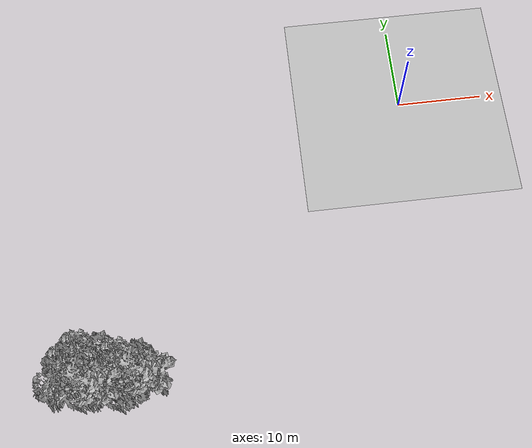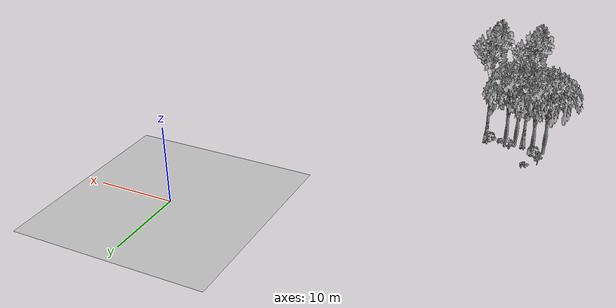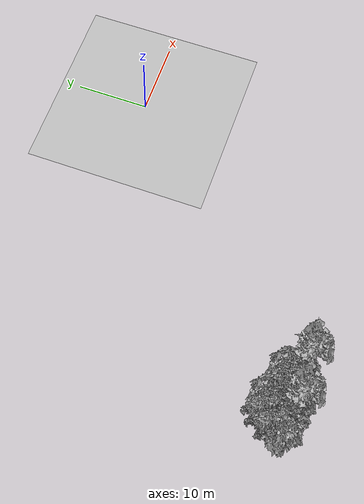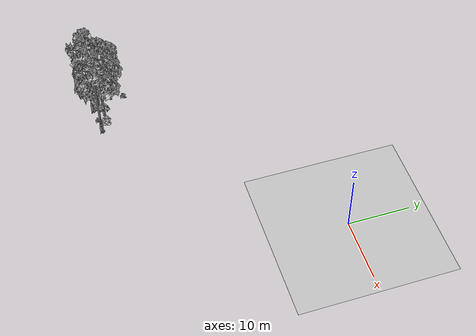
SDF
<sdf version="1.7">
 <world name="default">
  <model name="ground_plane">
   <static>1</static>
   <link name="link">
    <collision name="collision">
     <pose>-50 0 0 0 -0 0</pose>
     <geometry><plane><normal>0 0 1</normal><size>80 80</size></plane></geometry>
     <surface><contact><ode><min_depth>0.01</min_depth><max_vel>0</max_vel></ode></contact></surface>
    </collision>
    <visual name="grass">
     <cast_shadows>0</cast_shadows>
     <geometry>
      <mesh>
       <scale>0.46714285714285714 0.46714285714285714 0.1</scale>
       <uri>file://grass_plane/meshes/grass_plane.dae</uri>
      </mesh>
     </geometry>
    </visual>
   </link>
  </model>
  <model name="Tree 203">
   <static>1</static>
   <pose>-30.37163454133747 -31.457435455897613 0 1.57079 -0 0</pose>
   <link name="link">
    <collision name="collision">
     <geometry><mesh><scale>3.5 5 3.5</scale><uri>model://tree_9/meshes/tree_9.obj</uri></mesh></geometry>
    </collision>
    <visual name="visual">
     <geometry><mesh><scale>3.5 5 3.5</scale><uri>model://tree_9/meshes/tree_9.obj</uri></mesh></geometry>
    </visual>
   </link>
  </model>
  <model name="Tree 333">
   <static>1</static>
   <pose>-33.29838917129198 -30.363768954298685 0 1.57079 -0 0</pose>
   <link name="link">
    <collision name="collision">
     <geometry><mesh><scale>3.5 5 3.5</scale><uri>model://tree_2/meshes/tree_2.obj</uri></mesh></geometry>
    </collision>
    <visual name="visual">
     <geometry><mesh><scale>3.5 5 3.5</scale><uri>model://tree_2/meshes/tree_2.obj</uri></mesh></geometry>
    </visual>
   </link>
  </model>
  <model name="Tree 413">
   <static>1</static>
   <pose>-34.51379039275147 -30.93726430435109 0 1.57079 -0 0</pose>
   <link name="link">
    <collision name="collision">
     <geometry><mesh><scale>3.5 5 3.5</scale><uri>model://tree_2/meshes/tree_2.obj</uri></mesh></geometry>
    </collision>
    <visual name="visual">
     <geometry><mesh><scale>3.5 5 3.5</scale><uri>model://tree_2/meshes/tree_2.obj</uri></mesh></geometry>
    </visual>
   </link>
  </model>
  <model name="Tree 445">
   <static>1</static>
   <pose>-35.336045083622835 -31.89640982866944 0 1.57079 -0 0</pose>
   <link name="link">
    <collision name="collision">
     <geometry><mesh><scale>3.5 5 3.5</scale><uri>model://tree_9/meshes/tree_9.obj</uri></mesh></geometry>
    </collision>
    <visual name="visual">
     <geometry><mesh><scale>3.5 5 3.5</scale><uri>model://tree_9/meshes/tree_9.obj</uri></mesh></geometry>
    </visual>
   </link>
  </model>
  <model name="Tree 600">
   <static>1</static>
   <pose>-38.38035680725715 -30.47497342694087 0 1.57079 -0 0</pose>
   <link name="link">
    <collision name="collision">
     <geometry><mesh><scale>3.5 5 3.5</scale><uri>model://tree_2/meshes/tree_2.obj</uri></mesh></geometry>
    </collision>
    <visual name="visual">
     <geometry><mesh><scale>3.5 5 3.5</scale><uri>model://tree_2/meshes/tree_2.obj</uri></mesh></geometry>
    </visual>
   </link>
  </model>
  <model name="Tree 617">
   <static>1</static>
   <pose>-37.04784340980117 -29.201668822372877 0 1.57079 -0 0</pose>
   <link name="link">
    <collision name="collision">
     <geometry><mesh><scale>3.5 5 3.5</scale><uri>model://tree_2/meshes/tree_2.obj</uri></mesh></geometry>
    </collision>
    <visual name="visual">
     <geometry><mesh><scale>3.5 5 3.5</scale><uri>model://tree_2/meshes/tree_2.obj</uri></mesh></geometry>
    </visual>
   </link>
  </model>
  <model name="Bush 32">
   <static>1</static>
   <pose>-32.45443247648159 -31.57715483068385 0 1.57079 -0 0</pose>
   <link name="link">
    <collision name="collision">
     <geometry><mesh><scale>2 2 2</scale><uri>model://bush_2/meshes/bush_2.obj</uri></mesh></geometry>
     <surface><contact><collide_without_contact>false</collide_without_contact></contact></surface>
    </collision>
    <visual name="visual">
     <geometry><mesh><scale>2 2 2</scale><uri>model://bush_2/meshes/bush_2.obj</uri></mesh></geometry>
    </visual>
   </link>
  </model>
  <model name="Bush 34">
   <static>1</static>
   <pose>-37.305024418268246 -29.026580867516607 0 1.57079 -0 0</pose>
   <link name="link">
    <collision name="collision">
     <geometry><mesh><scale>2 2 2</scale><uri>model://bush_1/meshes/bush_1.obj</uri></mesh></geometry>
     <surface><contact><collide_without_contact>false</collide_without_contact></contact></surface>
    </collision>
    <visual name="visual">
     <geometry><mesh><scale>2 2 2</scale><uri>model://bush_1/meshes/bush_1.obj</uri></mesh></geometry>
    </visual>
   </link>
  </model>
  <model name="Bush 177">
   <static>1</static>
   <pose>-33.91037957990828 -29.761744788214124 0 1.57079 -0 0</pose>
   <link name="link">
    <collision name="collision">
     <geometry><mesh><scale>2 2 2</scale><uri>model://bush_0/meshes/bush_0.obj</uri></mesh></geometry>
     <surface><contact><collide_without_contact>false</collide_without_contact></contact></surface>
    </collision>
    <visual name="visual">
     <geometry><mesh><scale>2 2 2</scale><uri>model://bush_0/meshes/bush_0.obj</uri></mesh></geometry>
    </visual>
   </link>
  </model>
  <model name="Bush 529">
   <static>1</static>
   <pose>-38.15795691625592 -27.115568198822963 0 1.57079 -0 0</pose>
   <link name="link">
    <collision name="collision">
     <geometry><mesh><scale>2 2 2</scale><uri>model://bush_5/meshes/bush_5.obj</uri></mesh></geometry>
     <surface><contact><collide_without_contact>false</collide_without_contact></contact></surface>
    </collision>
    <visual name="visual">
     <geometry><mesh><scale>2 2 2</scale><uri>model://bush_5/meshes/bush_5.obj</uri></mesh></geometry>
    </visual>
   </link>
  </model>
  <model name="Bush 621">
   <static>1</static>
   <pose>-36.66001789129887 -26.44857167962556 0 1.57079 -0 0</pose>
   <link name="link">
    <collision name="collision">
     <geometry><mesh><scale>2 2 2</scale><uri>model://bush_2/meshes/bush_2.obj</uri></mesh></geometry>
     <surface><contact><collide_without_contact>false</collide_without_contact></contact></surface>
    </collision>
    <visual name="visual">
     <geometry><mesh><scale>2 2 2</scale><uri>model://bush_2/meshes/bush_2.obj</uri></mesh></geometry>
    </visual>
   </link>
  </model>
  <model name="Bush 633">
   <static>1</static>
   <pose>-31.099380220984298 -30.58392399920053 0 1.57079 -0 0</pose>
   <link name="link">
    <collision name="collision">
     <geometry><mesh><scale>2 2 2</scale><uri>model://bush_1/meshes/bush_1.obj</uri></mesh></geometry>
     <surface><contact><collide_without_contact>false</collide_without_contact></contact></surface>
    </collision>
    <visual name="visual">
     <geometry><mesh><scale>2 2 2</scale><uri>model://bush_1/meshes/bush_1.obj</uri></mesh></geometry>
    </visual>
   </link>
  </model>
 </world>
</sdf>
